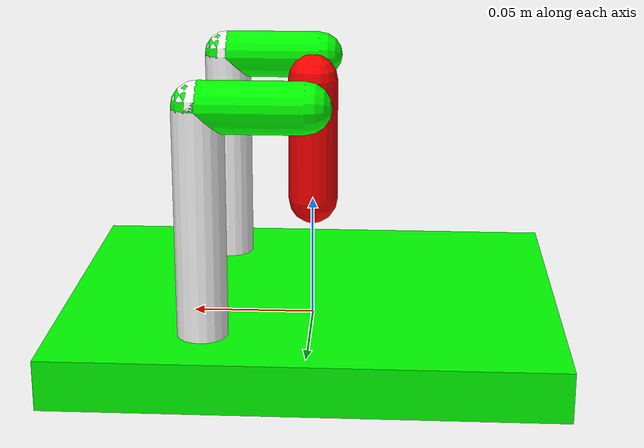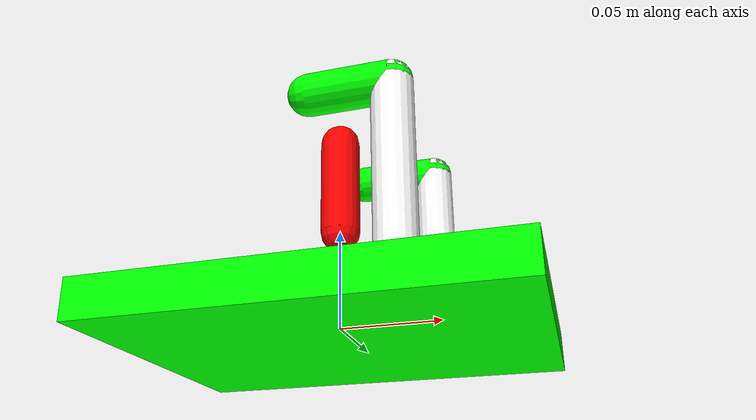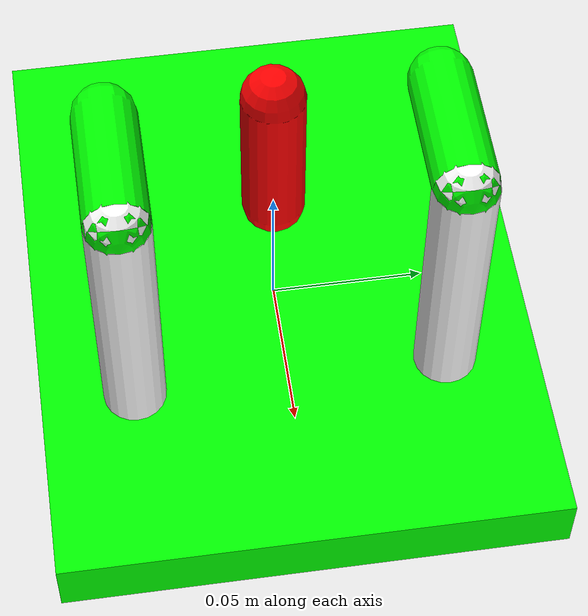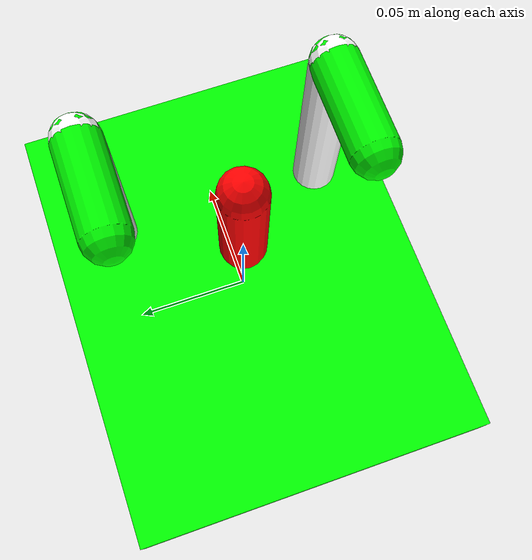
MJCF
<mujoco>
    <option gravity="0 0 0" timestep="0.002" />
    <asset>
        <material name="blue_" rgba="0 0 1 1" />
        <material name="green" rgba="0 1 0 1" />
        <material name="red__" rgba="1 0 0 1" />
        <material name="white" rgba="1 1 1 1" />
    </asset>
    <worldbody>
        <geom type="plane" size="10 10 0.1" pos="0 0 -2" rgba=".1 0 0.6 1" />
        <light diffuse=".5 .5 .5" pos="0 0 3" dir="0 0 -1" />
        <body name="base_link" pos="0 0 0">
            <geom  contype="0" conaffinity="0" type="capsule" size="0.01" fromto="0 0 0.05 0 0 0.1" material="red__" />
            <body name="l_bar" pos="0 0.05 0.1" euler="0 0 0">
                <joint name="ankle_l_joint" pos="0 0 0" axis="0 1 0" range="-50 50"/>
                <geom type="capsule" size=".01" fromto="0 0 0 0.04 0 0" material="green" />
                <body name="l_link" pos="0.04 0 0" euler="0 0 0">
                    <joint name="l_link_hinge" pos="0 0 0" axis="0 1 0" type="ball"/>
                    <geom  contype="0" conaffinity="0" type="capsule" size=".01" fromto="0 0 0 0 0 -0.1" material="white" />
                </body>
            </body>
            <body name="r_bar" pos="0 -0.05 0.1" euler="0 0 0">
                <joint name="ankle_r_joint" pos="0 0 0" axis="0 1 0" range="-50 50"/>
                <geom type="capsule" size=".01" fromto="0 0 0 0.04 0 0" material="green" />
                <body name="r_link" pos="0.04 0 0" euler="0 0 0">
                    <joint name="r_link_hinge" pos="0 0 0" axis="0 1 0" type="ball"/>
                    <geom  contype="0" conaffinity="0" type="capsule" size=".01" fromto="0 0 0 0 0 -0.1" material="white" />
                </body>
            </body>
            <body name="ankle_pitch_link" pos="0 0 0.0" euler="0 0 0">
                <joint name="ankle_pitch_joint" pos="0 0 0" axis="0 1 0" range="-50 50" type="hinge"/>
                <geom contype="0" conaffinity="0" type="capsule" size=".01 0.05" pos="0 0 0" euler="90 0 0" material="blue_" />
                <body name="ankle_roll_link" pos="0 0 0.0" euler="0 0 0">
                    <joint name="ankle_roll_joint" pos="0 0 0" axis="1 0 0" range="-30 30" type="hinge" />
                    <geom contype="0" conaffinity="0" type="box" size=".1 0.08 0.01" pos="0 0 0" euler="0 0 0" material="green" />
                </body>
            </body>
        </body>
    </worldbody>
    <equality>
        <connect name="kinematic_link_l" active="true" body1="ankle_roll_link" body2="l_link" anchor="0.04 0.05 0" solref="0.001 1"/>
        <connect name="kinematic_link_r" active="true" body1="ankle_roll_link" body2="r_link" anchor="0.04 -0.05 0" />
    </equality>
    <actuator>
        <motor name="ankle_pitch_motor" joint="ankle_pitch_joint"/>
        <motor name="ankle_roll_motor" joint="ankle_roll_joint"/>
        <motor name="ankle_l_motor" joint="ankle_l_joint"/>
        <motor name="ankle_r_motor" joint="ankle_r_joint"/>
    </actuator>
</mujoco>
